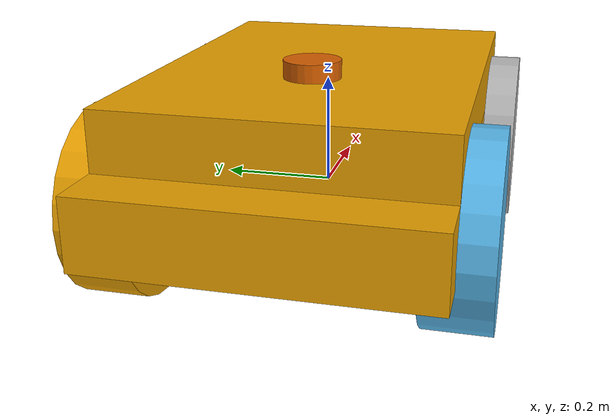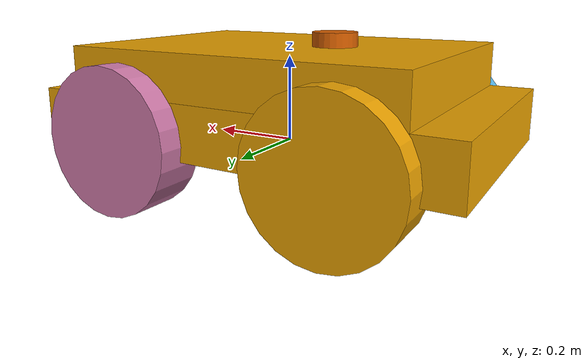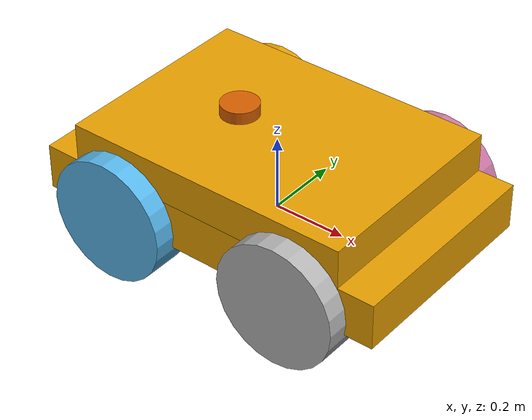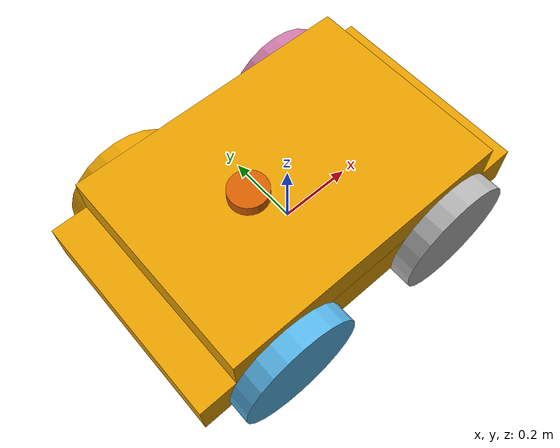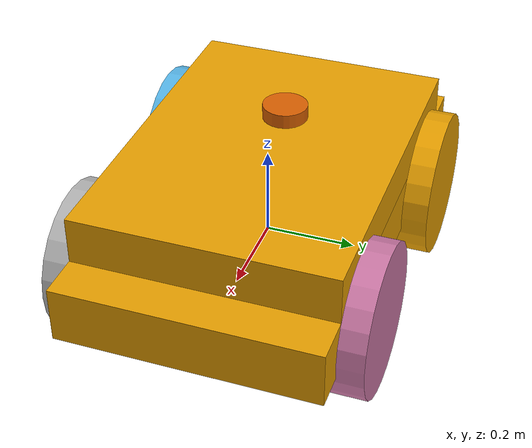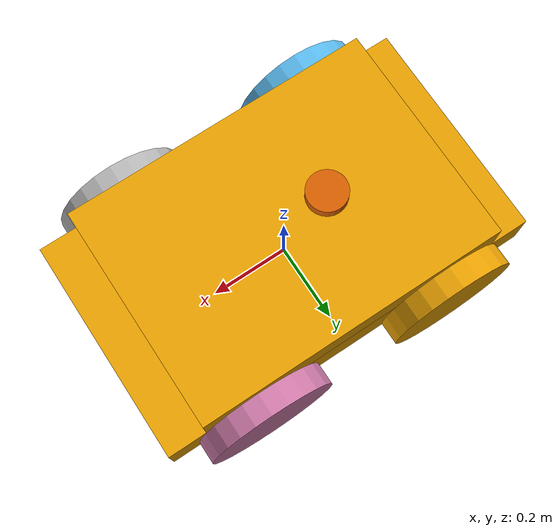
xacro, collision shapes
<?xml version="1.0"?>

<robot xmlns:xacro="http://ros.org/wiki/xacro" name="beetle">
  <!-- robot name parameter -->

  <xacro:arg name="prefix" default="" />

  <xacro:include filename="$(find nav2_bringup)/urdf/beetle/base.xacro" />

  <xacro:base prefix="$(arg prefix)" />

  <gazebo>
    <plugin name="skid_steer_drive_controller" filename="libgazebo_ros_skid_steer_drive.so">
      <update_rate>100.0</update_rate>
      <robotNamespace>/</robotNamespace>
      <leftFrontJoint>front_left_wheel_joint</leftFrontJoint>
      <rightFrontJoint>front_right_wheel_joint</rightFrontJoint>
      <leftRearJoint>rear_left_wheel_joint</leftRearJoint>
      <rightRearJoint>rear_right_wheel_joint</rightRearJoint>
      <wheelSeparation>0.4</wheelSeparation>
      <wheelDiameter>0.215</wheelDiameter>
      <robotBaseFrame>base_link</robotBaseFrame>
      <torque>20</torque>
      <topicName>cmd_vel</topicName>
      <broadcastTF>false</broadcastTF>

      <!-- output -->

    </plugin>
  </gazebo>

  <gazebo reference="$(arg prefix)imu_link">
    <sensor name="$(arg prefix)imu_sensor" type="imu">
    <plugin filename="libgazebo_ros_imu_sensor.so" name="$(arg prefix)imu_plugin">
        <ros>
          <namespace>$(arg prefix)</namespace>
          <remapping>~/out:=imu</remapping>
        </ros>
        <initial_orientation_as_reference>false</initial_orientation_as_reference>
      </plugin>
      <always_on>true</always_on>
      <update_rate>100</update_rate>
      <visualize>true</visualize>
    </sensor>
  </gazebo>

  <gazebo reference="$(arg prefix)gps_link">
    <sensor name="$(arg prefix)gps_sensor" type="gps">
    <plugin filename="libgazebo_ros_gps_sensor.so" name="$(arg prefix)gps_plugin">
        <ros>
          <namespace>$(arg prefix)</namespace>
          <remapping>~/out:=gps</remapping>
        </ros>
      </plugin>
      <always_on>true</always_on>
      <update_rate>10</update_rate>
    </sensor>
  </gazebo>

  <gazebo reference="$(arg prefix)base_scan">
    <sensor name="hls_lfcd_lds" type="ray">
      <always_on>true</always_on>
      <visualize>true</visualize>
      <origin xyz="-0.064 0 0.121" rpy="0 0 0" />
      <update_rate>5</update_rate>
      <ray>
        <scan>
          <horizontal>
            <samples>360</samples>
            <resolution>1.000000</resolution>
            <min_angle>0.000000</min_angle>
            <max_angle>6.280000</max_angle>
          </horizontal>
        </scan>
        <range>
          <min>0.120000</min>
          <max>3.5</max>
          <resolution>0.015000</resolution>
        </range>
        <noise>
          <type>gaussian</type>
          <mean>0.0</mean>
          <stddev>0.01</stddev>
        </noise>
      </ray>
      <plugin name="turtlebot3_laserscan" filename="libgazebo_ros_ray_sensor.so">
        <ros>
            <remapping>~/out:=scan</remapping>
        </ros>
        <output_type>sensor_msgs/LaserScan</output_type>
        <frame_name>base_scan</frame_name>
      </plugin>
    </sensor>
  </gazebo>

</robot>

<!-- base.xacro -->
<robot xmlns:xacro="http://ros.org/wiki/xacro" name="base">

  <xacro:arg name="laser_enabled" default="1" />
  <xacro:arg name="laser_xyz" default="0.2206 0.0 0.00635" />
  <xacro:arg name="laser_rpy" default="0.0 0.0 0.0" />
  <xacro:property name="laser_z_offset" value="0.1" />

  <xacro:arg name="realsense_enabled" default="0" />
  <xacro:arg name="realsense_xyz" default="0 0 0" />
  <xacro:arg name="realsense_rpy" default="0 0 0" />
  <xacro:arg name="realsense_mount" default="sensor_arch_mount_link" />

  <xacro:property name="husky_front_bumper_extend" value="0" />
  <xacro:property name="husky_rear_bumper_extend" value="0" />

  <xacro:arg name="robot_namespace" default="/" />
  <xacro:arg name="is_sim" default="false" />
  <xacro:arg name="urdf_extras" default="empty.urdf" />
  <xacro:arg name="serial_port" default="/dev/prolific" />

  <!-- Included URDF/XACRO Files -->
  <xacro:include filename="$(find nav2_bringup)/urdf/beetle/wheel.xacro" />
  <xacro:include filename="$(find nav2_bringup)/urdf/beetle/accessories/intel_realsense.urdf.xacro"/>
  <xacro:include filename="$(find nav2_bringup)/urdf/beetle/accessories/sensor_arch.urdf.xacro"/>

  <xacro:property name="M_PI" value="3.14159"/>

  <xacro:macro name="base" params="prefix">

    <!-- Base Size -->
    <xacro:property name="base_x_size" value="0.98740000" />
    <xacro:property name="base_y_size" value="0.57090000" />
    <xacro:property name="base_z_size" value="0.24750000" />

    <!-- Wheel Mounting Positions -->
    <xacro:property name="wheelbase" value="0.5120" />
    <xacro:property name="track" value="0.5708" />
    <xacro:property name="wheel_vertical_offset" value="0.03282" />

    <!-- Wheel Properties -->
    <xacro:property name="wheel_length" value="0.1143" />
    <xacro:property name="wheel_radius" value="0.1651" />

    <!-- Base link is the center of the robot's bottom plate -->
    <link name="base_link">
      <visual>
        <origin xyz="0 0 0" rpy="0 0 0" />
        <geometry>
          <mesh filename="package://nav2_bringup/meshes/base_link.dae" />
        </geometry>
      </visual>
      <collision>
        <origin xyz="${( husky_front_bumper_extend - husky_rear_bumper_extend ) / 2.0} 0 ${base_z_size/4}" rpy="0 0 0" />
        <geometry>
          <box size="${ base_x_size + husky_front_bumper_extend + husky_rear_bumper_extend } ${base_y_size} ${base_z_size/2}"/>
        </geometry>
      </collision>
      <collision>
        <origin xyz="0 0 ${base_z_size*3/4-0.01}" rpy="0 0 0" />
        <geometry>
          <box size="${base_x_size*4/5} ${base_y_size} ${base_z_size/2-0.02}"/>
        </geometry>
      </collision>
    </link>

    <!-- Base footprint is on the ground under the robot -->
    <link name="base_footprint"/>

    <joint name="base_footprint_joint" type="fixed">
      <origin xyz="0 0 ${wheel_vertical_offset - wheel_radius}" rpy="0 0 0" />
      <parent link="base_link" />
      <child link="base_footprint" />
    </joint>

    <!-- Inertial link stores the robot's inertial information -->
    <link name="inertial_link">
      <inertial>
        <mass value="46.034" />
        <origin xyz="-0.00065 -0.085 0.062" />
        <inertia ixx="0.6022" ixy="-0.02364" ixz="-0.1197" iyy="1.7386" iyz="-0.001544" izz="2.0296" />
      </inertial>
    </link>

    <joint name="inertial_joint" type="fixed">
      <origin xyz="0 0 0" rpy="0 0 0" />
      <parent link="base_link" />
      <child link="inertial_link" />
    </joint>

    <!-- IMU Link-->
    <!-- Can be modified with environment variables in /etc/ros/setup.bash -->
    <link name="imu_link"/>
    <joint name="imu_joint" type="fixed">
      <origin xyz="0 0 0" rpy="0 0 0" />
      <parent link="base_link" />
      <child link="imu_link" />
    </joint>

    <!-- GPS Link-->
    <!-- Can be modified with environment variables in /etc/ros/setup.bash -->
    <link name="gps_link"/>
    <joint name="gps_joint" type="fixed">
      <origin xyz="0 0 0" rpy="0 0 0" />
      <parent link="base_link" />
      <child link="gps_link" />
    </joint>

    <!-- LASER Link-->
    <link name="base_scan">
      <inertial>
        <origin xyz="-0.052 0 0.111" rpy="0 0 0" />
        <inertia ixx="0.001" ixy="0.000" ixz="0.000" iyy="0.001" iyz="0.000" izz="0.001" />
        <mass value="0.125"/>
      </inertial>

      <collision name="lidar_sensor_collision">
        <origin xyz="-0.052 0 0.111" rpy="0 0 0" />
        <geometry>
          <cylinder radius="0.0508" length="0.055" />
        </geometry>
      </collision>

      <visual>
        <origin xyz="-0.064 0 0.35" rpy="0 0 0" />
        <geometry>
          <mesh filename="package://nav2_bringup/meshes/accessories/lms1xx_mount.dae" />
        </geometry>
      </visual>
    </link>
    <joint name="lidar_joint" type="fixed">
      <origin xyz="-0.064 0 0.121" rpy="0 0 0" />
      <parent link="base_link" />
      <child link="base_scan" />
      <axis xyz="0 0 1" />
    </joint>

    <!-- beetle wheel macros -->
    <xacro:wheel wheel_prefix="front_left">
      <origin xyz="${wheelbase/2} ${track/2} ${wheel_vertical_offset}" rpy="0 0 0" />
    </xacro:wheel>
    <xacro:wheel wheel_prefix="front_right">
      <origin xyz="${wheelbase/2} ${-track/2} ${wheel_vertical_offset}" rpy="0 0 0" />
    </xacro:wheel>
    <xacro:wheel wheel_prefix="rear_left">
      <origin xyz="${-wheelbase/2} ${track/2} ${wheel_vertical_offset}" rpy="0 0 0" />
    </xacro:wheel>
    <xacro:wheel wheel_prefix="rear_right">
      <origin xyz="${-wheelbase/2} ${-track/2} ${wheel_vertical_offset}" rpy="0 0 0" />
    </xacro:wheel>

  </xacro:macro>

</robot>

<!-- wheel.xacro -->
<robot xmlns:xacro="http://ros.org/wiki/xacro" name="wheel">

  <xacro:macro name="wheel" params="wheel_prefix *joint_pose">
    <link name="${wheel_prefix}_wheel">
      <inertial>
        <mass value="2.637" />
        <origin xyz="0 0 0" />
        <inertia  ixx="0.02467" ixy="0" ixz="0" iyy="0.04411" iyz="0" izz="0.02467" />
      </inertial>
      <visual>
        <origin xyz="0 0 0" rpy="0 0 0" />
        <geometry>
          <mesh filename="package://nav2_bringup/meshes/wheel.dae" />
        </geometry>
      </visual>
      <collision>
        <origin xyz="0 0 0" rpy="${M_PI/2} 0 0" />
        <geometry>
          <cylinder length="${wheel_length}" radius="${wheel_radius}" />
        </geometry>
      </collision>
    </link>

    <gazebo reference="${wheel_prefix}_wheel">
      <mu1 value="1.0"/>
      <mu2 value="0.5"/>
      <kp value="10000000.0" />
      <kd value="1.0" />
      <fdir1 value="1 0 0"/>
    </gazebo>

    <joint name="${wheel_prefix}_wheel_joint" type="continuous">
      <parent link="base_link"/>
      <child link="${wheel_prefix}_wheel"/>
      <xacro:insert_block name="joint_pose"/>
      <axis xyz="0 1 0" rpy="0 0 0" />
    </joint>

  </xacro:macro>
</robot>
